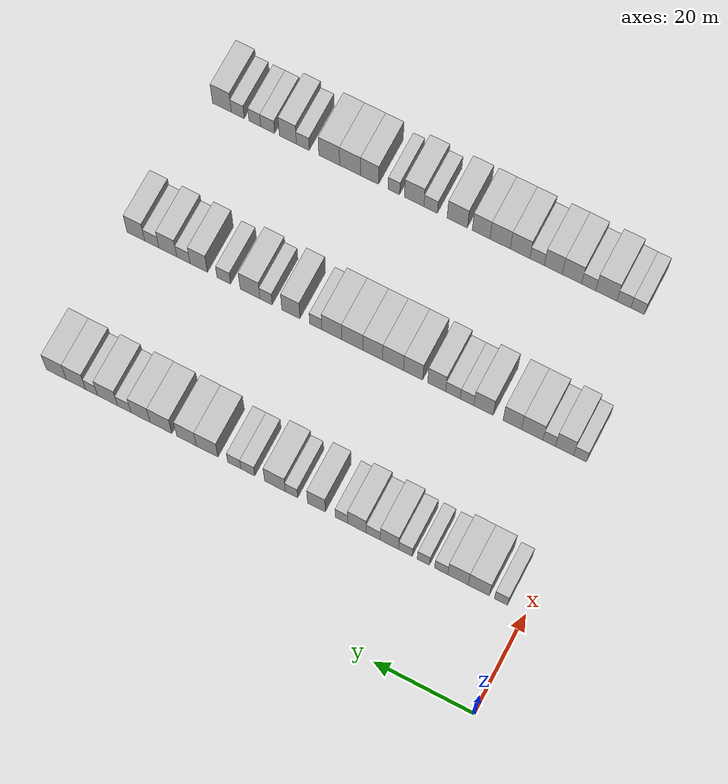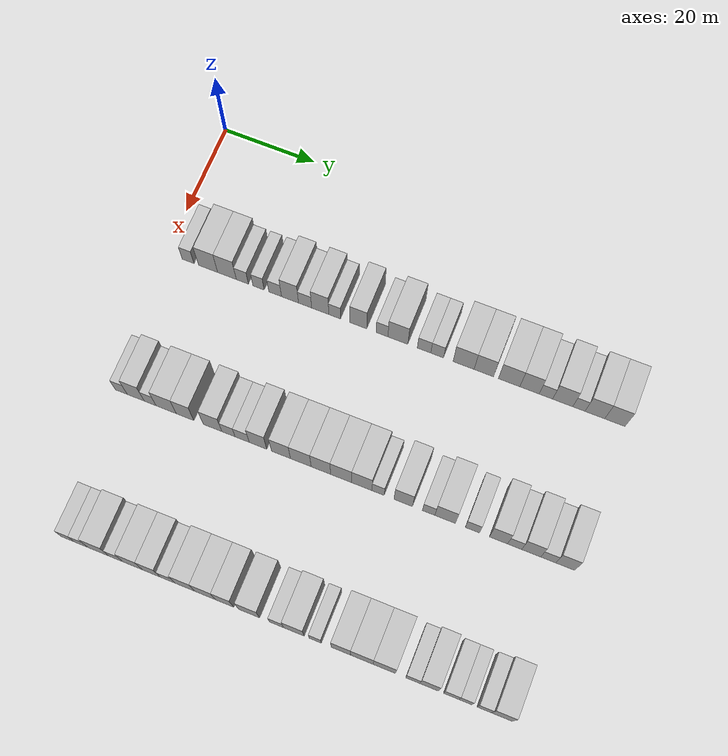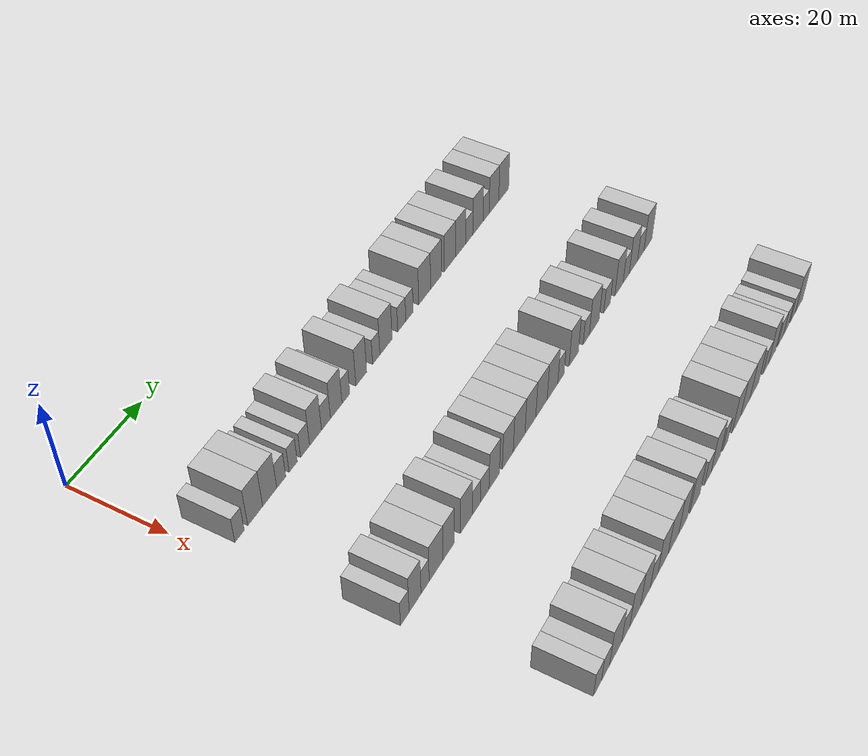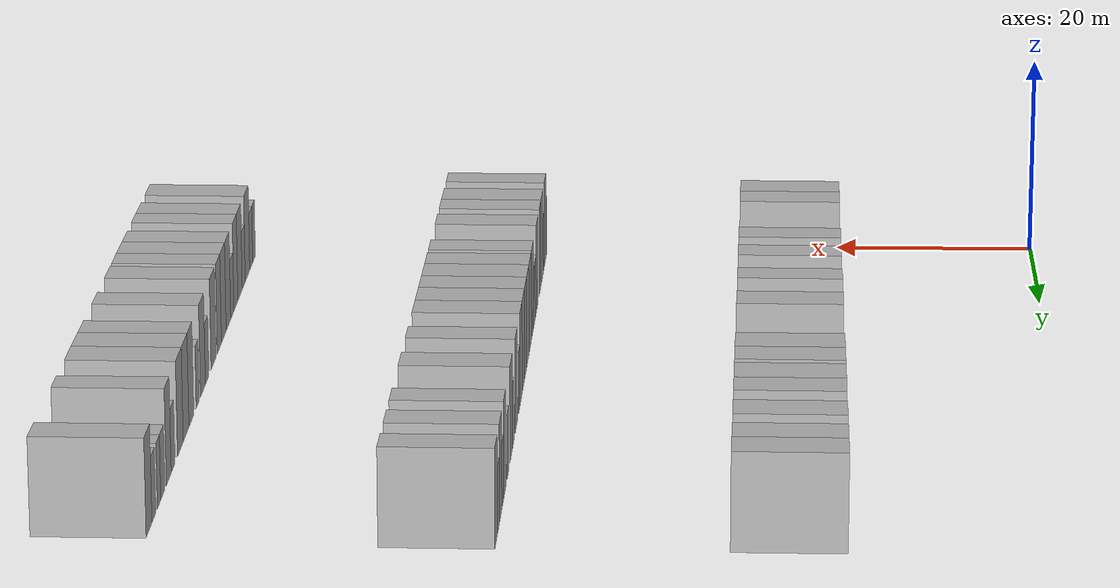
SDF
<sdf version="1.6">
 <world name="default">
  <model name="building_74">
   <static>1</static>
   <pose>25.0000 4.8869 0 0.000000 0.000000 0.000000</pose>
   <link name="link">
    <pose>0 0 3.00 0 0 0</pose>
    <collision name="collision"><geometry><box><size>10.0000 2.6042 6.0000</size></box></geometry></collision>
    <visual name="visual">
     <cast_shadows>0</cast_shadows>
     <geometry><box><size>10.0000 2.6042 6.0000</size></box></geometry>
     <material>
      <script>
       <uri>model://HANNAS_wall/materials/scripts</uri>
       <uri>model://HANNAS_wall/materials/textures</uri>
       <name>vrc/HANNAS_wall</name>
      </script>
     </material>
    </visual>
   </link>
  </model>
  <model name="building_75">
   <static>1</static>
   <pose>25.0000 9.2905 0 0.000000 0.000000 0.000000</pose>
   <link name="link">
    <pose>0 0 4.50 0 0 0</pose>
    <collision name="collision"><geometry><box><size>10.0000 4.2030 9.0000</size></box></geometry></collision>
    <visual name="visual">
     <cast_shadows>0</cast_shadows>
     <geometry><box><size>10.0000 4.2030 9.0000</size></box></geometry>
     <material>
      <script>
       <uri>model://HANNAS_wall/materials/scripts</uri>
       <uri>model://HANNAS_wall/materials/textures</uri>
       <name>vrc/HANNAS_wall</name>
      </script>
     </material>
    </visual>
   </link>
  </model>
  <model name="building_76">
   <static>1</static>
   <pose>25.0000 13.4351 0 0.000000 0.000000 0.000000</pose>
   <link name="link">
    <pose>0 0 4.50 0 0 0</pose>
    <collision name="collision"><geometry><box><size>10.0000 4.0862 9.0000</size></box></geometry></collision>
    <visual name="visual">
     <cast_shadows>0</cast_shadows>
     <geometry><box><size>10.0000 4.0862 9.0000</size></box></geometry>
     <material>
      <script>
       <uri>model://HANNAS_wall/materials/scripts</uri>
       <uri>model://HANNAS_wall/materials/textures</uri>
       <name>vrc/HANNAS_wall</name>
      </script>
     </material>
    </visual>
   </link>
  </model>
  <model name="building_77">
   <static>1</static>
   <pose>25.0000 16.8014 0 0.000000 0.000000 0.000000</pose>
   <link name="link">
    <pose>0 0 3.00 0 0 0</pose>
    <collision name="collision"><geometry><box><size>10.0000 2.6464 6.0000</size></box></geometry></collision>
    <visual name="visual">
     <cast_shadows>0</cast_shadows>
     <geometry><box><size>10.0000 2.6464 6.0000</size></box></geometry>
     <material>
      <script>
       <uri>model://HANNAS_wall/materials/scripts</uri>
       <uri>model://HANNAS_wall/materials/textures</uri>
       <name>vrc/HANNAS_wall</name>
      </script>
     </material>
    </visual>
   </link>
  </model>
  <model name="building_78">
   <static>1</static>
   <pose>25.0000 20.3485 0 0.000000 0.000000 0.000000</pose>
   <link name="link">
    <pose>0 0 3.00 0 0 0</pose>
    <collision name="collision"><geometry><box><size>10.0000 2.4479 6.0000</size></box></geometry></collision>
    <visual name="visual">
     <cast_shadows>0</cast_shadows>
     <geometry><box><size>10.0000 2.4479 6.0000</size></box></geometry>
     <material>
      <script>
       <uri>model://HANNAS_wall/materials/scripts</uri>
       <uri>model://HANNAS_wall/materials/textures</uri>
       <name>vrc/HANNAS_wall</name>
      </script>
     </material>
    </visual>
   </link>
  </model>
  <model name="building_79">
   <static>1</static>
   <pose>25.0000 23.9484 0 0.000000 0.000000 0.000000</pose>
   <link name="link">
    <pose>0 0 3.00 0 0 0</pose>
    <collision name="collision"><geometry><box><size>10.0000 2.7519 6.0000</size></box></geometry></collision>
    <visual name="visual">
     <cast_shadows>0</cast_shadows>
     <geometry><box><size>10.0000 2.7519 6.0000</size></box></geometry>
     <material>
      <script>
       <uri>model://HANNAS_wall/materials/scripts</uri>
       <uri>model://HANNAS_wall/materials/textures</uri>
       <name>vrc/HANNAS_wall</name>
      </script>
     </material>
    </visual>
   </link>
  </model>
  <model name="building_80">
   <static>1</static>
   <pose>25.0000 27.1741 0 0.000000 0.000000 0.000000</pose>
   <link name="link">
    <pose>0 0 4.50 0 0 0</pose>
    <collision name="collision"><geometry><box><size>10.0000 3.6996 9.0000</size></box></geometry></collision>
    <visual name="visual">
     <cast_shadows>0</cast_shadows>
     <geometry><box><size>10.0000 3.6996 9.0000</size></box></geometry>
     <material>
      <script>
       <uri>model://HANNAS_wall/materials/scripts</uri>
       <uri>model://HANNAS_wall/materials/textures</uri>
       <name>vrc/HANNAS_wall</name>
      </script>
     </material>
    </visual>
   </link>
  </model>
  <model name="building_81">
   <static>1</static>
   <pose>25.0000 30.4387 0 0.000000 0.000000 0.000000</pose>
   <link name="link">
    <pose>0 0 3.00 0 0 0</pose>
    <collision name="collision"><geometry><box><size>10.0000 2.8297 6.0000</size></box></geometry></collision>
    <visual name="visual">
     <cast_shadows>0</cast_shadows>
     <geometry><box><size>10.0000 2.8297 6.0000</size></box></geometry>
     <material>
      <script>
       <uri>model://HANNAS_wall/materials/scripts</uri>
       <uri>model://HANNAS_wall/materials/textures</uri>
       <name>vrc/HANNAS_wall</name>
      </script>
     </material>
    </visual>
   </link>
  </model>
  <model name="building_82">
   <static>1</static>
   <pose>25.0000 33.7056 0 0.000000 0.000000 0.000000</pose>
   <link name="link">
    <pose>0 0 4.50 0 0 0</pose>
    <collision name="collision"><geometry><box><size>10.0000 3.7041 9.0000</size></box></geometry></collision>
    <visual name="visual">
     <cast_shadows>0</cast_shadows>
     <geometry><box><size>10.0000 3.7041 9.0000</size></box></geometry>
     <material>
      <script>
       <uri>model://HANNAS_wall/materials/scripts</uri>
       <uri>model://HANNAS_wall/materials/textures</uri>
       <name>vrc/HANNAS_wall</name>
      </script>
     </material>
    </visual>
   </link>
  </model>
  <model name="building_83">
   <static>1</static>
   <pose>25.0000 36.8170 0 0.000000 0.000000 0.000000</pose>
   <link name="link">
    <pose>0 0 3.00 0 0 0</pose>
    <collision name="collision"><geometry><box><size>10.0000 2.5187 6.0000</size></box></geometry></collision>
    <visual name="visual">
     <cast_shadows>0</cast_shadows>
     <geometry><box><size>10.0000 2.5187 6.0000</size></box></geometry>
     <material>
      <script>
       <uri>model://HANNAS_wall/materials/scripts</uri>
       <uri>model://HANNAS_wall/materials/textures</uri>
       <name>vrc/HANNAS_wall</name>
      </script>
     </material>
    </visual>
   </link>
  </model>
  <model name="building_84">
   <static>1</static>
   <pose>25.0000 41.8803 0 0.000000 0.000000 0.000000</pose>
   <link name="link">
    <pose>0 0 4.50 0 0 0</pose>
    <collision name="collision"><geometry><box><size>10.0000 3.6078 9.0000</size></box></geometry></collision>
    <visual name="visual">
     <cast_shadows>0</cast_shadows>
     <geometry><box><size>10.0000 3.6078 9.0000</size></box></geometry>
     <material>
      <script>
       <uri>model://HANNAS_wall/materials/scripts</uri>
       <uri>model://HANNAS_wall/materials/textures</uri>
       <name>vrc/HANNAS_wall</name>
      </script>
     </material>
    </visual>
   </link>
  </model>
  <model name="building_85">
   <static>1</static>
   <pose>25.0000 46.9330 0 0.000000 0.000000 0.000000</pose>
   <link name="link">
    <pose>0 0 3.00 0 0 0</pose>
    <collision name="collision"><geometry><box><size>10.0000 2.4978 6.0000</size></box></geometry></collision>
    <visual name="visual">
     <cast_shadows>0</cast_shadows>
     <geometry><box><size>10.0000 2.4978 6.0000</size></box></geometry>
     <material>
      <script>
       <uri>model://HANNAS_wall/materials/scripts</uri>
       <uri>model://HANNAS_wall/materials/textures</uri>
       <name>vrc/HANNAS_wall</name>
      </script>
     </material>
    </visual>
   </link>
  </model>
  <model name="building_86">
   <static>1</static>
   <pose>25.0000 50.2954 0 0.000000 0.000000 0.000000</pose>
   <link name="link">
    <pose>0 0 4.50 0 0 0</pose>
    <collision name="collision"><geometry><box><size>10.0000 4.2269 9.0000</size></box></geometry></collision>
    <visual name="visual">
     <cast_shadows>0</cast_shadows>
     <geometry><box><size>10.0000 4.2269 9.0000</size></box></geometry>
     <material>
      <script>
       <uri>model://HANNAS_wall/materials/scripts</uri>
       <uri>model://HANNAS_wall/materials/textures</uri>
       <name>vrc/HANNAS_wall</name>
      </script>
     </material>
    </visual>
   </link>
  </model>
  <model name="building_87">
   <static>1</static>
   <pose>25.0000 55.8367 0 0.000000 0.000000 0.000000</pose>
   <link name="link">
    <pose>0 0 3.00 0 0 0</pose>
    <collision name="collision"><geometry><box><size>10.0000 2.8557 6.0000</size></box></geometry></collision>
    <visual name="visual">
     <cast_shadows>0</cast_shadows>
     <geometry><box><size>10.0000 2.8557 6.0000</size></box></geometry>
     <material>
      <script>
       <uri>model://HANNAS_wall/materials/scripts</uri>
       <uri>model://HANNAS_wall/materials/textures</uri>
       <name>vrc/HANNAS_wall</name>
      </script>
     </material>
    </visual>
   </link>
  </model>
  <model name="building_88">
   <static>1</static>
   <pose>25.0000 58.6057 0 0.000000 0.000000 0.000000</pose>
   <link name="link">
    <pose>0 0 3.00 0 0 0</pose>
    <collision name="collision"><geometry><box><size>10.0000 2.6823 6.0000</size></box></geometry></collision>
    <visual name="visual">
     <cast_shadows>0</cast_shadows>
     <geometry><box><size>10.0000 2.6823 6.0000</size></box></geometry>
     <material>
      <script>
       <uri>model://HANNAS_wall/materials/scripts</uri>
       <uri>model://HANNAS_wall/materials/textures</uri>
       <name>vrc/HANNAS_wall</name>
      </script>
     </material>
    </visual>
   </link>
  </model>
  <model name="building_89">
   <static>1</static>
   <pose>25.0000 64.1570 0 0.000000 0.000000 0.000000</pose>
   <link name="link">
    <pose>0 0 4.50 0 0 0</pose>
    <collision name="collision"><geometry><box><size>10.0000 4.4203 9.0000</size></box></geometry></collision>
    <visual name="visual">
     <cast_shadows>0</cast_shadows>
     <geometry><box><size>10.0000 4.4203 9.0000</size></box></geometry>
     <material>
      <script>
       <uri>model://HANNAS_wall/materials/scripts</uri>
       <uri>model://HANNAS_wall/materials/textures</uri>
       <name>vrc/HANNAS_wall</name>
      </script>
     </material>
    </visual>
   </link>
  </model>
  <model name="building_90">
   <static>1</static>
   <pose>25.0000 68.3959 0 0.000000 0.000000 0.000000</pose>
   <link name="link">
    <pose>0 0 4.50 0 0 0</pose>
    <collision name="collision"><geometry><box><size>10.0000 4.0574 9.0000</size></box></geometry></collision>
    <visual name="visual">
     <cast_shadows>0</cast_shadows>
     <geometry><box><size>10.0000 4.0574 9.0000</size></box></geometry>
     <material>
      <script>
       <uri>model://HANNAS_wall/materials/scripts</uri>
       <uri>model://HANNAS_wall/materials/textures</uri>
       <name>vrc/HANNAS_wall</name>
      </script>
     </material>
    </visual>
   </link>
  </model>
  <model name="building_91">
   <static>1</static>
   <pose>25.0000 73.6635 0 0.000000 0.000000 0.000000</pose>
   <link name="link">
    <pose>0 0 4.50 0 0 0</pose>
    <collision name="collision"><geometry><box><size>10.0000 4.4778 9.0000</size></box></geometry></collision>
    <visual name="visual">
     <cast_shadows>0</cast_shadows>
     <geometry><box><size>10.0000 4.4778 9.0000</size></box></geometry>
     <material>
      <script>
       <uri>model://HANNAS_wall/materials/scripts</uri>
       <uri>model://HANNAS_wall/materials/textures</uri>
       <name>vrc/HANNAS_wall</name>
      </script>
     </material>
    </visual>
   </link>
  </model>
  <model name="building_92">
   <static>1</static>
   <pose>25.0000 77.8851 0 0.000000 0.000000 0.000000</pose>
   <link name="link">
    <pose>0 0 4.50 0 0 0</pose>
    <collision name="collision"><geometry><box><size>10.0000 3.9656 9.0000</size></box></geometry></collision>
    <visual name="visual">
     <cast_shadows>0</cast_shadows>
     <geometry><box><size>10.0000 3.9656 9.0000</size></box></geometry>
     <material>
      <script>
       <uri>model://HANNAS_wall/materials/scripts</uri>
       <uri>model://HANNAS_wall/materials/textures</uri>
       <name>vrc/HANNAS_wall</name>
      </script>
     </material>
    </visual>
   </link>
  </model>
  <model name="building_93">
   <static>1</static>
   <pose>25.0000 81.2719 0 0.000000 0.000000 0.000000</pose>
   <link name="link">
    <pose>0 0 3.00 0 0 0</pose>
    <collision name="collision"><geometry><box><size>10.0000 2.8080 6.0000</size></box></geometry></collision>
    <visual name="visual">
     <cast_shadows>0</cast_shadows>
     <geometry><box><size>10.0000 2.8080 6.0000</size></box></geometry>
     <material>
      <script>
       <uri>model://HANNAS_wall/materials/scripts</uri>
       <uri>model://HANNAS_wall/materials/textures</uri>
       <name>vrc/HANNAS_wall</name>
      </script>
     </material>
    </visual>
   </link>
  </model>
  <model name="building_94">
   <static>1</static>
   <pose>25.0000 84.7445 0 0.000000 0.000000 0.000000</pose>
   <link name="link">
    <pose>0 0 4.50 0 0 0</pose>
    <collision name="collision"><geometry><box><size>10.0000 4.1371 9.0000</size></box></geometry></collision>
    <visual name="visual">
     <cast_shadows>0</cast_shadows>
     <geometry><box><size>10.0000 4.1371 9.0000</size></box></geometry>
     <material>
      <script>
       <uri>model://HANNAS_wall/materials/scripts</uri>
       <uri>model://HANNAS_wall/materials/textures</uri>
       <name>vrc/HANNAS_wall</name>
      </script>
     </material>
    </visual>
   </link>
  </model>
  <model name="building_95">
   <static>1</static>
   <pose>25.0000 88.0716 0 0.000000 0.000000 0.000000</pose>
   <link name="link">
    <pose>0 0 3.00 0 0 0</pose>
    <collision name="collision"><geometry><box><size>10.0000 2.5172 6.0000</size></box></geometry></collision>
    <visual name="visual">
     <cast_shadows>0</cast_shadows>
     <geometry><box><size>10.0000 2.5172 6.0000</size></box></geometry>
     <material>
      <script>
       <uri>model://HANNAS_wall/materials/scripts</uri>
       <uri>model://HANNAS_wall/materials/textures</uri>
       <name>vrc/HANNAS_wall</name>
      </script>
     </material>
    </visual>
   </link>
  </model>
  <model name="building_96">
   <static>1</static>
   <pose>25.0000 91.3381 0 0.000000 0.000000 0.000000</pose>
   <link name="link">
    <pose>0 0 4.50 0 0 0</pose>
    <collision name="collision"><geometry><box><size>10.0000 4.0158 9.0000</size></box></geometry></collision>
    <visual name="visual">
     <cast_shadows>0</cast_shadows>
     <geometry><box><size>10.0000 4.0158 9.0000</size></box></geometry>
     <material>
      <script>
       <uri>model://HANNAS_wall/materials/scripts</uri>
       <uri>model://HANNAS_wall/materials/textures</uri>
       <name>vrc/HANNAS_wall</name>
      </script>
     </material>
    </visual>
   </link>
  </model>
  <model name="building_97">
   <static>1</static>
   <pose>25.0000 95.4282 0 0.000000 0.000000 0.000000</pose>
   <link name="link">
    <pose>0 0 4.50 0 0 0</pose>
    <collision name="collision"><geometry><box><size>10.0000 4.1644 9.0000</size></box></geometry></collision>
    <visual name="visual">
     <cast_shadows>0</cast_shadows>
     <geometry><box><size>10.0000 4.1644 9.0000</size></box></geometry>
     <material>
      <script>
       <uri>model://HANNAS_wall/materials/scripts</uri>
       <uri>model://HANNAS_wall/materials/textures</uri>
       <name>vrc/HANNAS_wall</name>
      </script>
     </material>
    </visual>
   </link>
  </model>
  <model name="building_216">
   <static>1</static>
   <pose>55.0000 4.0495 0 0.000000 0.000000 0.000000</pose>
   <link name="link">
    <pose>0 0 3.00 0 0 0</pose>
    <collision name="collision"><geometry><box><size>10.0000 2.5752 6.0000</size></box></geometry></collision>
    <visual name="visual">
     <cast_shadows>0</cast_shadows>
     <geometry><box><size>10.0000 2.5752 6.0000</size></box></geometry>
     <material>
      <script>
       <uri>model://HANNAS_wall/materials/scripts</uri>
       <uri>model://HANNAS_wall/materials/textures</uri>
       <name>vrc/HANNAS_wall</name>
      </script>
     </material>
    </visual>
   </link>
  </model>
  <model name="building_217">
   <static>1</static>
   <pose>55.0000 7.1588 0 0.000000 0.000000 0.000000</pose>
   <link name="link">
    <pose>0 0 4.50 0 0 0</pose>
    <collision name="collision"><geometry><box><size>10.0000 3.6435 9.0000</size></box></geometry></collision>
    <visual name="visual">
     <cast_shadows>0</cast_shadows>
     <geometry><box><size>10.0000 3.6435 9.0000</size></box></geometry>
     <material>
      <script>
       <uri>model://HANNAS_wall/materials/scripts</uri>
       <uri>model://HANNAS_wall/materials/textures</uri>
       <name>vrc/HANNAS_wall</name>
      </script>
     </material>
    </visual>
   </link>
  </model>
  <model name="building_218">
   <static>1</static>
   <pose>55.0000 10.2488 0 0.000000 0.000000 0.000000</pose>
   <link name="link">
    <pose>0 0 3.00 0 0 0</pose>
    <collision name="collision"><geometry><box><size>10.0000 2.5365 6.0000</size></box></geometry></collision>
    <visual name="visual">
     <cast_shadows>0</cast_shadows>
     <geometry><box><size>10.0000 2.5365 6.0000</size></box></geometry>
     <material>
      <script>
       <uri>model://HANNAS_wall/materials/scripts</uri>
       <uri>model://HANNAS_wall/materials/textures</uri>
       <name>vrc/HANNAS_wall</name>
      </script>
     </material>
    </visual>
   </link>
  </model>
  <model name="building_219">
   <static>1</static>
   <pose>55.0000 13.6852 0 0.000000 0.000000 0.000000</pose>
   <link name="link">
    <pose>0 0 4.50 0 0 0</pose>
    <collision name="collision"><geometry><box><size>10.0000 4.3364 9.0000</size></box></geometry></collision>
    <visual name="visual">
     <cast_shadows>0</cast_shadows>
     <geometry><box><size>10.0000 4.3364 9.0000</size></box></geometry>
     <material>
      <script>
       <uri>model://HANNAS_wall/materials/scripts</uri>
       <uri>model://HANNAS_wall/materials/textures</uri>
       <name>vrc/HANNAS_wall</name>
      </script>
     </material>
    </visual>
   </link>
  </model>
  <model name="building_220">
   <static>1</static>
   <pose>55.0000 17.7146 0 0.000000 0.000000 0.000000</pose>
   <link name="link">
    <pose>0 0 4.50 0 0 0</pose>
    <collision name="collision"><geometry><box><size>10.0000 3.7222 9.0000</size></box></geometry></collision>
    <visual name="visual">
     <cast_shadows>0</cast_shadows>
     <geometry><box><size>10.0000 3.7222 9.0000</size></box></geometry>
     <material>
      <script>
       <uri>model://HANNAS_wall/materials/scripts</uri>
       <uri>model://HANNAS_wall/materials/textures</uri>
       <name>vrc/HANNAS_wall</name>
      </script>
     </material>
    </visual>
   </link>
  </model>
  <model name="building_221">
   <static>1</static>
   <pose>55.0000 23.5398 0 0.000000 0.000000 0.000000</pose>
   <link name="link">
    <pose>0 0 4.50 0 0 0</pose>
    <collision name="collision"><geometry><box><size>10.0000 3.9283 9.0000</size></box></geometry></collision>
    <visual name="visual">
     <cast_shadows>0</cast_shadows>
     <geometry><box><size>10.0000 3.9283 9.0000</size></box></geometry>
     <material>
      <script>
       <uri>model://HANNAS_wall/materials/scripts</uri>
       <uri>model://HANNAS_wall/materials/textures</uri>
       <name>vrc/HANNAS_wall</name>
      </script>
     </material>
    </visual>
   </link>
  </model>
  <model name="building_222">
   <static>1</static>
   <pose>55.0000 26.8912 0 0.000000 0.000000 0.000000</pose>
   <link name="link">
    <pose>0 0 3.00 0 0 0</pose>
    <collision name="collision"><geometry><box><size>10.0000 2.7744 6.0000</size></box></geometry></collision>
    <visual name="visual">
     <cast_shadows>0</cast_shadows>
     <geometry><box><size>10.0000 2.7744 6.0000</size></box></geometry>
     <material>
      <script>
       <uri>model://HANNAS_wall/materials/scripts</uri>
       <uri>model://HANNAS_wall/materials/textures</uri>
       <name>vrc/HANNAS_wall</name>
      </script>
     </material>
    </visual>
   </link>
  </model>
  <model name="building_223">
   <static>1</static>
   <pose>55.0000 29.7625 0 0.000000 0.000000 0.000000</pose>
   <link name="link">
    <pose>0 0 3.00 0 0 0</pose>
    <collision name="collision"><geometry><box><size>10.0000 2.9682 6.0000</size></box></geometry></collision>
    <visual name="visual">
     <cast_shadows>0</cast_shadows>
     <geometry><box><size>10.0000 2.9682 6.0000</size></box></geometry>
     <material>
      <script>
       <uri>model://HANNAS_wall/materials/scripts</uri>
       <uri>model://HANNAS_wall/materials/textures</uri>
       <name>vrc/HANNAS_wall</name>
      </script>
     </material>
    </visual>
   </link>
  </model>
  <model name="building_224">
   <static>1</static>
   <pose>55.0000 33.0839 0 0.000000 0.000000 0.000000</pose>
   <link name="link">
    <pose>0 0 4.50 0 0 0</pose>
    <collision name="collision"><geometry><box><size>10.0000 3.6745 9.0000</size></box></geometry></collision>
    <visual name="visual">
     <cast_shadows>0</cast_shadows>
     <geometry><box><size>10.0000 3.6745 9.0000</size></box></geometry>
     <material>
      <script>
       <uri>model://HANNAS_wall/materials/scripts</uri>
       <uri>model://HANNAS_wall/materials/textures</uri>
       <name>vrc/HANNAS_wall</name>
      </script>
     </material>
    </visual>
   </link>
  </model>
  <model name="building_225">
   <static>1</static>
   <pose>55.0000 37.8895 0 0.000000 0.000000 0.000000</pose>
   <link name="link">
    <pose>0 0 4.50 0 0 0</pose>
    <collision name="collision"><geometry><box><size>10.0000 3.9368 9.0000</size></box></geometry></collision>
    <visual name="visual">
     <cast_shadows>0</cast_shadows>
     <geometry><box><size>10.0000 3.9368 9.0000</size></box></geometry>
     <material>
      <script>
       <uri>model://HANNAS_wall/materials/scripts</uri>
       <uri>model://HANNAS_wall/materials/textures</uri>
       <name>vrc/HANNAS_wall</name>
      </script>
     </material>
    </visual>
   </link>
  </model>
  <model name="building_226">
   <static>1</static>
   <pose>55.0000 42.0110 0 0.000000 0.000000 0.000000</pose>
   <link name="link">
    <pose>0 0 4.50 0 0 0</pose>
    <collision name="collision"><geometry><box><size>10.0000 4.3061 9.0000</size></box></geometry></collision>
    <visual name="visual">
     <cast_shadows>0</cast_shadows>
     <geometry><box><size>10.0000 4.3061 9.0000</size></box></geometry>
     <material>
      <script>
       <uri>model://HANNAS_wall/materials/scripts</uri>
       <uri>model://HANNAS_wall/materials/textures</uri>
       <name>vrc/HANNAS_wall</name>
      </script>
     </material>
    </visual>
   </link>
  </model>
  <model name="building_227">
   <static>1</static>
   <pose>55.0000 46.1838 0 0.000000 0.000000 0.000000</pose>
   <link name="link">
    <pose>0 0 4.50 0 0 0</pose>
    <collision name="collision"><geometry><box><size>10.0000 4.0394 9.0000</size></box></geometry></collision>
    <visual name="visual">
     <cast_shadows>0</cast_shadows>
     <geometry><box><size>10.0000 4.0394 9.0000</size></box></geometry>
     <material>
      <script>
       <uri>model://HANNAS_wall/materials/scripts</uri>
       <uri>model://HANNAS_wall/materials/textures</uri>
       <name>vrc/HANNAS_wall</name>
      </script>
     </material>
    </visual>
   </link>
  </model>
  <model name="building_228">
   <static>1</static>
   <pose>55.0000 50.3794 0 0.000000 0.000000 0.000000</pose>
   <link name="link">
    <pose>0 0 4.50 0 0 0</pose>
    <collision name="collision"><geometry><box><size>10.0000 4.3519 9.0000</size></box></geometry></collision>
    <visual name="visual">
     <cast_shadows>0</cast_shadows>
     <geometry><box><size>10.0000 4.3519 9.0000</size></box></geometry>
     <material>
      <script>
       <uri>model://HANNAS_wall/materials/scripts</uri>
       <uri>model://HANNAS_wall/materials/textures</uri>
       <name>vrc/HANNAS_wall</name>
      </script>
     </material>
    </visual>
   </link>
  </model>
  <model name="building_229">
   <static>1</static>
   <pose>55.0000 54.6221 0 0.000000 0.000000 0.000000</pose>
   <link name="link">
    <pose>0 0 4.50 0 0 0</pose>
    <collision name="collision"><geometry><box><size>10.0000 4.1334 9.0000</size></box></geometry></collision>
    <visual name="visual">
     <cast_shadows>0</cast_shadows>
     <geometry><box><size>10.0000 4.1334 9.0000</size></box></geometry>
     <material>
      <script>
       <uri>model://HANNAS_wall/materials/scripts</uri>
       <uri>model://HANNAS_wall/materials/textures</uri>
       <name>vrc/HANNAS_wall</name>
      </script>
     </material>
    </visual>
   </link>
  </model>
  <model name="building_230">
   <static>1</static>
   <pose>55.0000 57.9455 0 0.000000 0.000000 0.000000</pose>
   <link name="link">
    <pose>0 0 3.00 0 0 0</pose>
    <collision name="collision"><geometry><box><size>10.0000 2.5134 6.0000</size></box></geometry></collision>
    <visual name="visual">
     <cast_shadows>0</cast_shadows>
     <geometry><box><size>10.0000 2.5134 6.0000</size></box></geometry>
     <material>
      <script>
       <uri>model://HANNAS_wall/materials/scripts</uri>
       <uri>model://HANNAS_wall/materials/textures</uri>
       <name>vrc/HANNAS_wall</name>
      </script>
     </material>
    </visual>
   </link>
  </model>
  <model name="building_231">
   <static>1</static>
   <pose>55.0000 63.0878 0 0.000000 0.000000 0.000000</pose>
   <link name="link">
    <pose>0 0 4.50 0 0 0</pose>
    <collision name="collision"><geometry><box><size>10.0000 3.7712 9.0000</size></box></geometry></collision>
    <visual name="visual">
     <cast_shadows>0</cast_shadows>
     <geometry><box><size>10.0000 3.7712 9.0000</size></box></geometry>
     <material>
      <script>
       <uri>model://HANNAS_wall/materials/scripts</uri>
       <uri>model://HANNAS_wall/materials/textures</uri>
       <name>vrc/HANNAS_wall</name>
      </script>
     </material>
    </visual>
   </link>
  </model>
  <model name="building_232">
   <static>1</static>
   <pose>55.0000 68.2513 0 0.000000 0.000000 0.000000</pose>
   <link name="link">
    <pose>0 0 3.00 0 0 0</pose>
    <collision name="collision"><geometry><box><size>10.0000 2.5556 6.0000</size></box></geometry></collision>
    <visual name="visual">
     <cast_shadows>0</cast_shadows>
     <geometry><box><size>10.0000 2.5556 6.0000</size></box></geometry>
     <material>
      <script>
       <uri>model://HANNAS_wall/materials/scripts</uri>
       <uri>model://HANNAS_wall/materials/textures</uri>
       <name>vrc/HANNAS_wall</name>
      </script>
     </material>
    </visual>
   </link>
  </model>
  <model name="building_233">
   <static>1</static>
   <pose>55.0000 71.5942 0 0.000000 0.000000 0.000000</pose>
   <link name="link">
    <pose>0 0 4.50 0 0 0</pose>
    <collision name="collision"><geometry><box><size>10.0000 4.1302 9.0000</size></box></geometry></collision>
    <visual name="visual">
     <cast_shadows>0</cast_shadows>
     <geometry><box><size>10.0000 4.1302 9.0000</size></box></geometry>
     <material>
      <script>
       <uri>model://HANNAS_wall/materials/scripts</uri>
       <uri>model://HANNAS_wall/materials/textures</uri>
       <name>vrc/HANNAS_wall</name>
      </script>
     </material>
    </visual>
   </link>
  </model>
  <model name="building_234">
   <static>1</static>
   <pose>55.0000 77.0848 0 0.000000 0.000000 0.000000</pose>
   <link name="link">
    <pose>0 0 3.00 0 0 0</pose>
    <collision name="collision"><geometry><box><size>10.0000 2.8511 6.0000</size></box></geometry></collision>
    <visual name="visual">
     <cast_shadows>0</cast_shadows>
     <geometry><box><size>10.0000 2.8511 6.0000</size></box></geometry>
     <material>
      <script>
       <uri>model://HANNAS_wall/materials/scripts</uri>
       <uri>model://HANNAS_wall/materials/textures</uri>
       <name>vrc/HANNAS_wall</name>
      </script>
     </material>
    </visual>
   </link>
  </model>
  <model name="building_235">
   <static>1</static>
   <pose>55.0000 82.3235 0 0.000000 0.000000 0.000000</pose>
   <link name="link">
    <pose>0 0 4.50 0 0 0</pose>
    <collision name="collision"><geometry><box><size>10.0000 3.6262 9.0000</size></box></geometry></collision>
    <visual name="visual">
     <cast_shadows>0</cast_shadows>
     <geometry><box><size>10.0000 3.6262 9.0000</size></box></geometry>
     <material>
      <script>
       <uri>model://HANNAS_wall/materials/scripts</uri>
       <uri>model://HANNAS_wall/materials/textures</uri>
       <name>vrc/HANNAS_wall</name>
      </script>
     </material>
    </visual>
   </link>
  </model>
  <model name="building_236">
   <static>1</static>
   <pose>55.0000 85.5456 0 0.000000 0.000000 0.000000</pose>
   <link name="link">
    <pose>0 0 3.00 0 0 0</pose>
    <collision name="collision"><geometry><box><size>10.0000 2.8181 6.0000</size></box></geometry></collision>
    <visual name="visual">
     <cast_shadows>0</cast_shadows>
     <geometry><box><size>10.0000 2.8181 6.0000</size></box></geometry>
     <material>
      <script>
       <uri>model://HANNAS_wall/materials/scripts</uri>
       <uri>model://HANNAS_wall/materials/textures</uri>
       <name>vrc/HANNAS_wall</name>
      </script>
     </material>
    </visual>
   </link>
  </model>
  <model name="building_237">
   <static>1</static>
   <pose>55.0000 88.8382 0 0.000000 0.000000 0.000000</pose>
   <link name="link">
    <pose>0 0 4.50 0 0 0</pose>
    <collision name="collision"><geometry><box><size>10.0000 3.7671 9.0000</size></box></geometry></collision>
    <visual name="visual">
     <cast_shadows>0</cast_shadows>
     <geometry><box><size>10.0000 3.7671 9.0000</size></box></geometry>
     <material>
      <script>
       <uri>model://HANNAS_wall/materials/scripts</uri>
       <uri>model://HANNAS_wall/materials/textures</uri>
       <name>vrc/HANNAS_wall</name>
      </script>
     </material>
    </visual>
   </link>
  </model>
  <model name="building_238">
   <static>1</static>
   <pose>55.0000 92.2166 0 0.000000 0.000000 0.000000</pose>
   <link name="link">
    <pose>0 0 3.00 0 0 0</pose>
    <collision name="collision"><geometry><box><size>10.0000 2.9897 6.0000</size></box></geometry></collision>
    <visual name="visual">
     <cast_shadows>0</cast_shadows>
     <geometry><box><size>10.0000 2.9897 6.0000</size></box></geometry>
     <material>
      <script>
       <uri>model://HANNAS_wall/materials/scripts</uri>
       <uri>model://HANNAS_wall/materials/textures</uri>
       <name>vrc/HANNAS_wall</name>
      </script>
     </material>
    </visual>
   </link>
  </model>
  <model name="building_239">
   <static>1</static>
   <pose>55.0000 95.5828 0 0.000000 0.000000 0.000000</pose>
   <link name="link">
    <pose>0 0 4.50 0 0 0</pose>
    <collision name="collision"><geometry><box><size>10.0000 3.7426 9.0000</size></box></geometry></collision>
    <visual name="visual">
     <cast_shadows>0</cast_shadows>
     <geometry><box><size>10.0000 3.7426 9.0000</size></box></geometry>
     <material>
      <script>
       <uri>model://HANNAS_wall/materials/scripts</uri>
       <uri>model://HANNAS_wall/materials/textures</uri>
       <name>vrc/HANNAS_wall</name>
      </script>
     </material>
    </visual>
   </link>
  </model>
  <model name="building_355">
   <static>1</static>
   <pose>85.0000 7.0290 0 0.000000 0.000000 0.000000</pose>
   <link name="link">
    <pose>0 0 3.00 0 0 0</pose>
    <collision name="collision"><geometry><box><size>10.0000 2.7450 6.0000</size></box></geometry></collision>
    <visual name="visual">
     <cast_shadows>0</cast_shadows>
     <geometry><box><size>10.0000 2.7450 6.0000</size></box></geometry>
     <material>
      <script>
       <uri>model://HANNAS_wall/materials/scripts</uri>
       <uri>model://HANNAS_wall/materials/textures</uri>
       <name>vrc/HANNAS_wall</name>
      </script>
     </material>
    </visual>
   </link>
  </model>
  <model name="building_356">
   <static>1</static>
   <pose>85.0000 9.8272 0 0.000000 0.000000 0.000000</pose>
   <link name="link">
    <pose>0 0 3.00 0 0 0</pose>
    <collision name="collision"><geometry><box><size>10.0000 2.8515 6.0000</size></box></geometry></collision>
    <visual name="visual">
     <cast_shadows>0</cast_shadows>
     <geometry><box><size>10.0000 2.8515 6.0000</size></box></geometry>
     <material>
      <script>
       <uri>model://HANNAS_wall/materials/scripts</uri>
       <uri>model://HANNAS_wall/materials/textures</uri>
       <name>vrc/HANNAS_wall</name>
      </script>
     </material>
    </visual>
   </link>
  </model>
  <model name="building_357">
   <static>1</static>
   <pose>85.0000 13.4239 0 0.000000 0.000000 0.000000</pose>
   <link name="link">
    <pose>0 0 4.50 0 0 0</pose>
    <collision name="collision"><geometry><box><size>10.0000 4.3417 9.0000</size></box></geometry></collision>
    <visual name="visual">
     <cast_shadows>0</cast_shadows>
     <geometry><box><size>10.0000 4.3417 9.0000</size></box></geometry>
     <material>
      <script>
       <uri>model://HANNAS_wall/materials/scripts</uri>
       <uri>model://HANNAS_wall/materials/textures</uri>
       <name>vrc/HANNAS_wall</name>
      </script>
     </material>
    </visual>
   </link>
  </model>
  <model name="building_358">
   <static>1</static>
   <pose>85.0000 17.0440 0 0.000000 0.000000 0.000000</pose>
   <link name="link">
    <pose>0 0 3.00 0 0 0</pose>
    <collision name="collision"><geometry><box><size>10.0000 2.8984 6.0000</size></box></geometry></collision>
    <visual name="visual">
     <cast_shadows>0</cast_shadows>
     <geometry><box><size>10.0000 2.8984 6.0000</size></box></geometry>
     <material>
      <script>
       <uri>model://HANNAS_wall/materials/scripts</uri>
       <uri>model://HANNAS_wall/materials/textures</uri>
       <name>vrc/HANNAS_wall</name>
      </script>
     </material>
    </visual>
   </link>
  </model>
  <model name="building_359">
   <static>1</static>
   <pose>85.0000 20.4914 0 0.000000 0.000000 0.000000</pose>
   <link name="link">
    <pose>0 0 4.50 0 0 0</pose>
    <collision name="collision"><geometry><box><size>10.0000 3.9964 9.0000</size></box></geometry></collision>
    <visual name="visual">
     <cast_shadows>0</cast_shadows>
     <geometry><box><size>10.0000 3.9964 9.0000</size></box></geometry>
     <material>
      <script>
       <uri>model://HANNAS_wall/materials/scripts</uri>
       <uri>model://HANNAS_wall/materials/textures</uri>
       <name>vrc/HANNAS_wall</name>
      </script>
     </material>
    </visual>
   </link>
  </model>
  <model name="building_360">
   <static>1</static>
   <pose>85.0000 24.3319 0 0.000000 0.000000 0.000000</pose>
   <link name="link">
    <pose>0 0 4.50 0 0 0</pose>
    <collision name="collision"><geometry><box><size>10.0000 3.6847 9.0000</size></box></geometry></collision>
    <visual name="visual">
     <cast_shadows>0</cast_shadows>
     <geometry><box><size>10.0000 3.6847 9.0000</size></box></geometry>
     <material>
      <script>
       <uri>model://HANNAS_wall/materials/scripts</uri>
       <uri>model://HANNAS_wall/materials/textures</uri>
       <name>vrc/HANNAS_wall</name>
      </script>
     </material>
    </visual>
   </link>
  </model>
  <model name="building_361">
   <static>1</static>
   <pose>85.0000 27.6578 0 0.000000 0.000000 0.000000</pose>
   <link name="link">
    <pose>0 0 3.00 0 0 0</pose>
    <collision name="collision"><geometry><box><size>10.0000 2.9670 6.0000</size></box></geometry></collision>
    <visual name="visual">
     <cast_shadows>0</cast_shadows>
     <geometry><box><size>10.0000 2.9670 6.0000</size></box></geometry>
     <material>
      <script>
       <uri>model://HANNAS_wall/materials/scripts</uri>
       <uri>model://HANNAS_wall/materials/textures</uri>
       <name>vrc/HANNAS_wall</name>
      </script>
     </material>
    </visual>
   </link>
  </model>
  <model name="building_362">
   <static>1</static>
   <pose>85.0000 31.1642 0 0.000000 0.000000 0.000000</pose>
   <link name="link">
    <pose>0 0 4.50 0 0 0</pose>
    <collision name="collision"><geometry><box><size>10.0000 4.0457 9.0000</size></box></geometry></collision>
    <visual name="visual">
     <cast_shadows>0</cast_shadows>
     <geometry><box><size>10.0000 4.0457 9.0000</size></box></geometry>
     <material>
      <script>
       <uri>model://HANNAS_wall/materials/scripts</uri>
       <uri>model://HANNAS_wall/materials/textures</uri>
       <name>vrc/HANNAS_wall</name>
      </script>
     </material>
    </visual>
   </link>
  </model>
  <model name="building_363">
   <static>1</static>
   <pose>85.0000 35.2891 0 0.000000 0.000000 0.000000</pose>
   <link name="link">
    <pose>0 0 4.50 0 0 0</pose>
    <collision name="collision"><geometry><box><size>10.0000 4.2041 9.0000</size></box></geometry></collision>
    <visual name="visual">
     <cast_shadows>0</cast_shadows>
     <geometry><box><size>10.0000 4.2041 9.0000</size></box></geometry>
     <material>
      <script>
       <uri>model://HANNAS_wall/materials/scripts</uri>
       <uri>model://HANNAS_wall/materials/textures</uri>
       <name>vrc/HANNAS_wall</name>
      </script>
     </material>
    </visual>
   </link>
  </model>
  <model name="building_364">
   <static>1</static>
   <pose>85.0000 39.2253 0 0.000000 0.000000 0.000000</pose>
   <link name="link">
    <pose>0 0 4.50 0 0 0</pose>
    <collision name="collision"><geometry><box><size>10.0000 3.6684 9.0000</size></box></geometry></collision>
    <visual name="visual">
     <cast_shadows>0</cast_shadows>
     <geometry><box><size>10.0000 3.6684 9.0000</size></box></geometry>
     <material>
      <script>
       <uri>model://HANNAS_wall/materials/scripts</uri>
       <uri>model://HANNAS_wall/materials/textures</uri>
       <name>vrc/HANNAS_wall</name>
      </script>
     </material>
    </visual>
   </link>
  </model>
  <model name="building_365">
   <static>1</static>
   <pose>85.0000 44.1725 0 0.000000 0.000000 0.000000</pose>
   <link name="link">
    <pose>0 0 4.50 0 0 0</pose>
    <collision name="collision"><geometry><box><size>10.0000 4.2260 9.0000</size></box></geometry></collision>
    <visual name="visual">
     <cast_shadows>0</cast_shadows>
     <geometry><box><size>10.0000 4.2260 9.0000</size></box></geometry>
     <material>
      <script>
       <uri>model://HANNAS_wall/materials/scripts</uri>
       <uri>model://HANNAS_wall/materials/textures</uri>
       <name>vrc/HANNAS_wall</name>
      </script>
     </material>
    </visual>
   </link>
  </model>
  <model name="building_366">
   <static>1</static>
   <pose>85.0000 49.6984 0 0.000000 0.000000 0.000000</pose>
   <link name="link">
    <pose>0 0 3.00 0 0 0</pose>
    <collision name="collision"><geometry><box><size>10.0000 2.8258 6.0000</size></box></geometry></collision>
    <visual name="visual">
     <cast_shadows>0</cast_shadows>
     <geometry><box><size>10.0000 2.8258 6.0000</size></box></geometry>
     <material>
      <script>
       <uri>model://HANNAS_wall/materials/scripts</uri>
       <uri>model://HANNAS_wall/materials/textures</uri>
       <name>vrc/HANNAS_wall</name>
      </script>
     </material>
    </visual>
   </link>
  </model>
  <model name="building_367">
   <static>1</static>
   <pose>85.0000 53.1504 0 0.000000 0.000000 0.000000</pose>
   <link name="link">
    <pose>0 0 4.50 0 0 0</pose>
    <collision name="collision"><geometry><box><size>10.0000 4.0782 9.0000</size></box></geometry></collision>
    <visual name="visual">
     <cast_shadows>0</cast_shadows>
     <geometry><box><size>10.0000 4.0782 9.0000</size></box></geometry>
     <material>
      <script>
       <uri>model://HANNAS_wall/materials/scripts</uri>
       <uri>model://HANNAS_wall/materials/textures</uri>
       <name>vrc/HANNAS_wall</name>
      </script>
     </material>
    </visual>
   </link>
  </model>
  <model name="building_368">
   <static>1</static>
   <pose>85.0000 57.3955 0 0.000000 0.000000 0.000000</pose>
   <link name="link">
    <pose>0 0 3.00 0 0 0</pose>
    <collision name="collision"><geometry><box><size>10.0000 2.4120 6.0000</size></box></geometry></collision>
    <visual name="visual">
     <cast_shadows>0</cast_shadows>
     <geometry><box><size>10.0000 2.4120 6.0000</size></box></geometry>
     <material>
      <script>
       <uri>model://HANNAS_wall/materials/scripts</uri>
       <uri>model://HANNAS_wall/materials/textures</uri>
       <name>vrc/HANNAS_wall</name>
      </script>
     </material>
    </visual>
   </link>
  </model>
  <model name="building_369">
   <static>1</static>
   <pose>85.0000 62.5042 0 0.000000 0.000000 0.000000</pose>
   <link name="link">
    <pose>0 0 4.50 0 0 0</pose>
    <collision name="collision"><geometry><box><size>10.0000 3.8054 9.0000</size></box></geometry></collision>
    <visual name="visual">
     <cast_shadows>0</cast_shadows>
     <geometry><box><size>10.0000 3.8054 9.0000</size></box></geometry>
     <material>
      <script>
       <uri>model://HANNAS_wall/materials/scripts</uri>
       <uri>model://HANNAS_wall/materials/textures</uri>
       <name>vrc/HANNAS_wall</name>
      </script>
     </material>
    </visual>
   </link>
  </model>
  <model name="building_370">
   <static>1</static>
   <pose>85.0000 66.6172 0 0.000000 0.000000 0.000000</pose>
   <link name="link">
    <pose>0 0 4.50 0 0 0</pose>
    <collision name="collision"><geometry><box><size>10.0000 4.4206 9.0000</size></box></geometry></collision>
    <visual name="visual">
     <cast_shadows>0</cast_shadows>
     <geometry><box><size>10.0000 4.4206 9.0000</size></box></geometry>
     <material>
      <script>
       <uri>model://HANNAS_wall/materials/scripts</uri>
       <uri>model://HANNAS_wall/materials/textures</uri>
       <name>vrc/HANNAS_wall</name>
      </script>
     </material>
    </visual>
   </link>
  </model>
  <model name="building_371">
   <static>1</static>
   <pose>85.0000 71.0210 0 0.000000 0.000000 0.000000</pose>
   <link name="link">
    <pose>0 0 4.50 0 0 0</pose>
    <collision name="collision"><geometry><box><size>10.0000 4.3870 9.0000</size></box></geometry></collision>
    <visual name="visual">
     <cast_shadows>0</cast_shadows>
     <geometry><box><size>10.0000 4.3870 9.0000</size></box></geometry>
     <material>
      <script>
       <uri>model://HANNAS_wall/materials/scripts</uri>
       <uri>model://HANNAS_wall/materials/textures</uri>
       <name>vrc/HANNAS_wall</name>
      </script>
     </material>
    </visual>
   </link>
  </model>
  <model name="building_372">
   <static>1</static>
   <pose>85.0000 76.5856 0 0.000000 0.000000 0.000000</pose>
   <link name="link">
    <pose>0 0 3.00 0 0 0</pose>
    <collision name="collision"><geometry><box><size>10.0000 2.7422 6.0000</size></box></geometry></collision>
    <visual name="visual">
     <cast_shadows>0</cast_shadows>
     <geometry><box><size>10.0000 2.7422 6.0000</size></box></geometry>
     <material>
      <script>
       <uri>model://HANNAS_wall/materials/scripts</uri>
       <uri>model://HANNAS_wall/materials/textures</uri>
       <name>vrc/HANNAS_wall</name>
      </script>
     </material>
    </visual>
   </link>
  </model>
  <model name="building_373">
   <static>1</static>
   <pose>85.0000 79.7633 0 0.000000 0.000000 0.000000</pose>
   <link name="link">
    <pose>0 0 4.50 0 0 0</pose>
    <collision name="collision"><geometry><box><size>10.0000 3.6132 9.0000</size></box></geometry></collision>
    <visual name="visual">
     <cast_shadows>0</cast_shadows>
     <geometry><box><size>10.0000 3.6132 9.0000</size></box></geometry>
     <material>
      <script>
       <uri>model://HANNAS_wall/materials/scripts</uri>
       <uri>model://HANNAS_wall/materials/textures</uri>
       <name>vrc/HANNAS_wall</name>
      </script>
     </material>
    </visual>
   </link>
  </model>
  <model name="building_374">
   <static>1</static>
   <pose>85.0000 84.0464 0 0.000000 0.000000 0.000000</pose>
   <link name="link">
    <pose>0 0 3.00 0 0 0</pose>
    <collision name="collision"><geometry><box><size>10.0000 2.9530 6.0000</size></box></geometry></collision>
    <visual name="visual">
     <cast_shadows>0</cast_shadows>
     <geometry><box><size>10.0000 2.9530 6.0000</size></box></geometry>
     <material>
      <script>
       <uri>model://HANNAS_wall/materials/scripts</uri>
       <uri>model://HANNAS_wall/materials/textures</uri>
       <name>vrc/HANNAS_wall</name>
      </script>
     </material>
    </visual>
   </link>
  </model>
  <model name="building_375">
   <static>1</static>
   <pose>85.0000 86.7854 0 0.000000 0.000000 0.000000</pose>
   <link name="link">
    <pose>0 0 3.00 0 0 0</pose>
    <collision name="collision"><geometry><box><size>10.0000 2.5250 6.0000</size></box></geometry></collision>
    <visual name="visual">
     <cast_shadows>0</cast_shadows>
     <geometry><box><size>10.0000 2.5250 6.0000</size></box></geometry>
     <material>
      <script>
       <uri>model://HANNAS_wall/materials/scripts</uri>
       <uri>model://HANNAS_wall/materials/textures</uri>
       <name>vrc/HANNAS_wall</name>
      </script>
     </material>
    </visual>
   </link>
  </model>
  <model name="building_376">
   <static>1</static>
   <pose>85.0000 90.4284 0 0.000000 0.000000 0.000000</pose>
   <link name="link">
    <pose>0 0 3.00 0 0 0</pose>
    <collision name="collision"><geometry><box><size>10.0000 2.7611 6.0000</size></box></geometry></collision>
    <visual name="visual">
     <cast_shadows>0</cast_shadows>
     <geometry><box><size>10.0000 2.7611 6.0000</size></box></geometry>
     <material>
      <script>
       <uri>model://HANNAS_wall/materials/scripts</uri>
       <uri>model://HANNAS_wall/materials/textures</uri>
       <name>vrc/HANNAS_wall</name>
      </script>
     </material>
    </visual>
   </link>
  </model>
  <model name="building_377">
   <static>1</static>
   <pose>85.0000 93.8141 0 0.000000 0.000000 0.000000</pose>
   <link name="link">
    <pose>0 0 4.50 0 0 0</pose>
    <collision name="collision"><geometry><box><size>10.0000 4.0105 9.0000</size></box></geometry></collision>
    <visual name="visual">
     <cast_shadows>0</cast_shadows>
     <geometry><box><size>10.0000 4.0105 9.0000</size></box></geometry>
     <material>
      <script>
       <uri>model://HANNAS_wall/materials/scripts</uri>
       <uri>model://HANNAS_wall/materials/textures</uri>
       <name>vrc/HANNAS_wall</name>
      </script>
     </material>
    </visual>
   </link>
  </model>
 </world>
</sdf>
